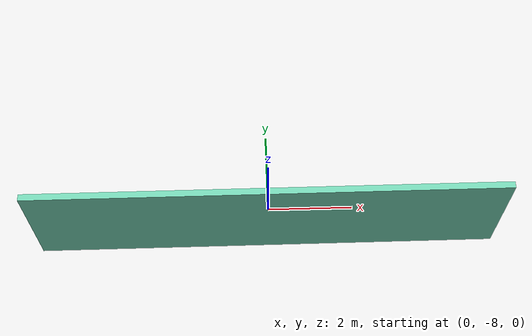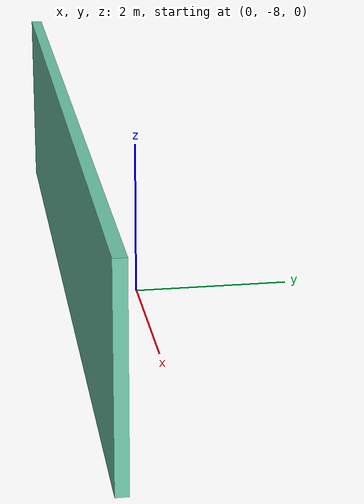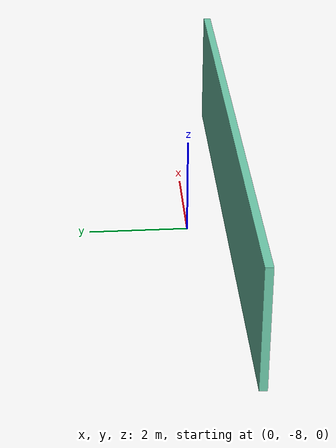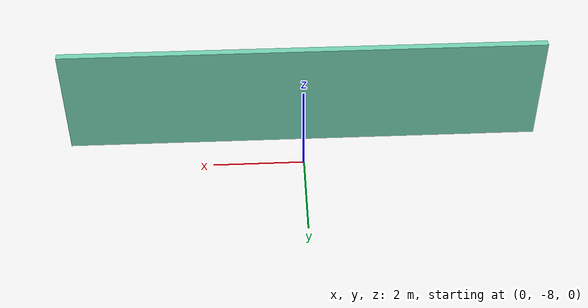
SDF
<?xml version='1.0'?>
<sdf version='1.6'>
  <model name='teal-wall'>
    <pose frame=''>-0.037274 -8.85668 0 0 -0 0</pose>
    <link name='Wall_11'>
      <collision name='Wall_11_Collision'>
        <geometry>
          <box>
            <size>10.5 0.15 2.5</size>
          </box>
        </geometry>
        <pose frame=''>0 0 1.25 0 -0 0</pose>
      </collision>
      <visual name='Wall_11_Visual'>
        <pose frame=''>0 0 1.25 0 -0 0</pose>
        <geometry>
          <box>
            <size>10.5 0.15 2.5</size>
          </box>
        </geometry>
        <material>
          <script>
            <uri>file://media/materials/scripts/gazebo.material</uri>
            <name>Gazebo/Grey</name>
          </script>
          <ambient>0.435294 0.796078 0.67451 1</ambient>
        </material>
        <meta>
          <layer>0</layer>
        </meta>
      </visual>
      <pose frame=''>0 0 0 0 -0 0</pose>
    </link>
    <static>1</static>
  </model>
</sdf>
